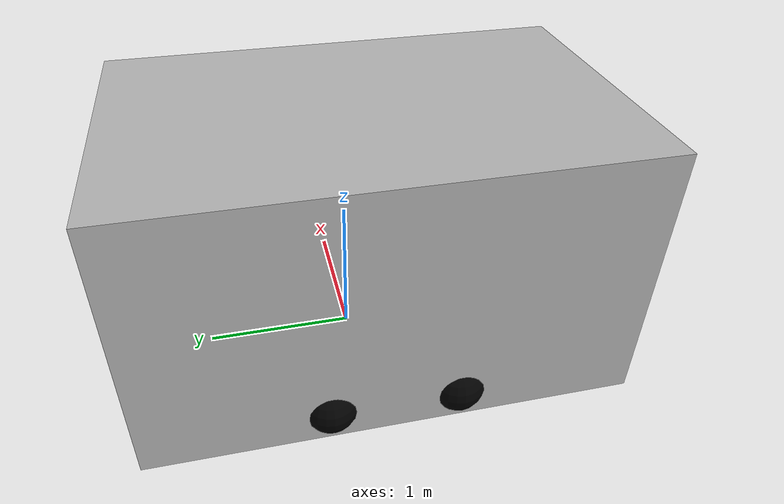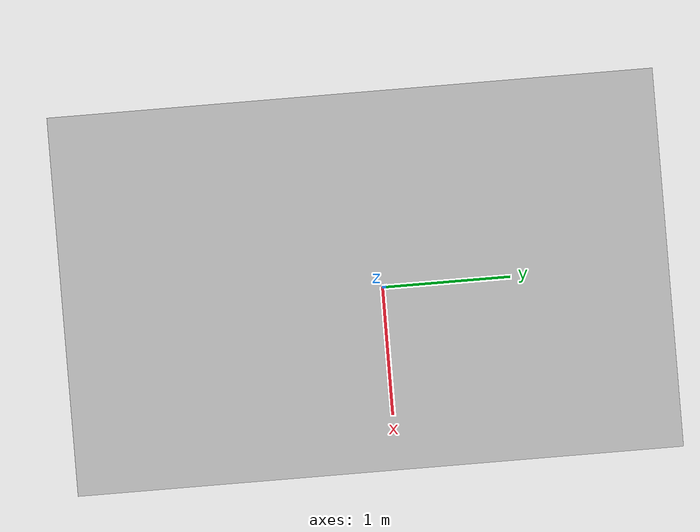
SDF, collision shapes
<?xml version="1.0"?>
<sdf version="1.6">
  <model name="exp_mecanum">
    <static>false</static>
    <link name="chassis">
      <inertial>
        <mass>80.0</mass>
        <inertia>
          <ixx>1.26</ixx><ixy>0</ixy><ixz>0</ixz>
          <iyy>4.16</iyy><iyz>0</iyz>
          <izz>4.81</izz>
        </inertia>
      </inertial>
      <collision name="body_box">
        <pose>-0.03 -0.132 0.9 0 0 0</pose>
        <geometry>
          <box><size>2.0 3.2 1.8</size></box>
        </geometry>
      </collision>
      <visual name="visual">
        <pose>0 0 -0.084 1.57 0 0</pose>
        <geometry>
          <mesh>
            <scale>0.6 0.6 0.6</scale>
            <uri>model://MecanumLift/meshes/MecanumLift.dae</uri>
          </mesh>
        </geometry>
      </visual>
    </link>

    <link name="front_right_wheel">
      <pose>0.858 -0.552 0.186 0 0 0</pose>
      <inertial>
        <mass>2</mass>
        <inertia>
          <ixx>0.145</ixx><ixy>0</ixy><ixz>0</ixz>
          <iyy>0.145</iyy><iyz>0</iyz>
          <izz>0.125</izz>
        </inertia>
      </inertial>
      <collision name="collision">
        <geometry><sphere><radius>0.18</radius></sphere></geometry>
      </collision>
      <visual name="visual">
        <geometry>
          <mesh>
            <uri>model://MecanumLift/meshes/mecanum_wheel_right.STL</uri>
            <scale>0.0036 0.0036 0.0036</scale>
          </mesh>
        </geometry>
        <material><ambient>0 0 0</ambient><diffuse>0 0 0</diffuse></material>
      </visual>
    </link>

    <link name="rear_right_wheel">
      <pose>-0.93 -0.552 0.186 0 0 0</pose>
      <inertial>
        <mass>2</mass>
        <inertia>
          <ixx>0.145</ixx><ixy>0</ixy><ixz>0</ixz>
          <iyy>0.145</iyy><iyz>0</iyz>
          <izz>0.125</izz>
        </inertia>
      </inertial>
      <collision name="collision">
        <geometry><sphere><radius>0.18</radius></sphere></geometry>
      </collision>
      <visual name="visual">
        <geometry>
          <mesh>
            <uri>model://MecanumLift/meshes/mecanum_wheel_left.STL</uri>
            <scale>0.0036 0.0036 0.0036</scale>
          </mesh>
        </geometry>
        <material><ambient>0 0 0</ambient><diffuse>0 0 0</diffuse></material>
      </visual>
    </link>

    <link name="front_left_wheel">
      <pose>0.858 0.282 0.186 0 0 0</pose>
      <inertial>
        <mass>2</mass>
        <inertia>
          <ixx>0.145</ixx><ixy>0</ixy><ixz>0</ixz>
          <iyy>0.145</iyy><iyz>0</iyz>
          <izz>0.125</izz>
        </inertia>
      </inertial>
      <collision name="collision">
        <geometry><sphere><radius>0.18</radius></sphere></geometry>
      </collision>
      <visual name="visual">
        <geometry>
          <mesh>
            <uri>model://MecanumLift/meshes/mecanum_wheel_left.STL</uri>
            <scale>0.0036 0.0036 0.0036</scale>
          </mesh>
        </geometry>
        <material><ambient>0 0 0</ambient><diffuse>0 0 0</diffuse></material>
      </visual>
    </link>

    <link name="rear_left_wheel">
      <pose>-0.93 0.282 0.186 0 0 0</pose>
      <inertial>
        <mass>2</mass>
        <inertia>
          <ixx>0.145</ixx><ixy>0</ixy><ixz>0</ixz>
          <iyy>0.145</iyy><iyz>0</iyz>
          <izz>0.125</izz>
        </inertia>
      </inertial>
      <collision name="collision">
        <geometry><sphere><radius>0.18</radius></sphere></geometry>
      </collision>
      <visual name="visual">
        <geometry>
          <mesh>
            <uri>model://MecanumLift/meshes/mecanum_wheel_right.STL</uri>
            <scale>0.0036 0.0036 0.0036</scale>
          </mesh>
        </geometry>
        <material><ambient>0 0 0</ambient><diffuse>0 0 0</diffuse></material>
      </visual>
    </link>

    <joint name="front_left_wheel_joint" type="revolute">
      <parent>chassis</parent>
      <child>front_left_wheel</child>
      <axis><xyz>0 1 0</xyz><limit><lower>-1e308</lower><upper>1e308</upper></limit></axis>
    </joint>
    <joint name="front_right_wheel_joint" type="revolute">
      <parent>chassis</parent>
      <child>front_right_wheel</child>
      <axis><xyz>0 1 0</xyz><limit><lower>-1e308</lower><upper>1e308</upper></limit></axis>
    </joint>
    <joint name="rear_left_wheel_joint" type="revolute">
      <parent>chassis</parent>
      <child>rear_left_wheel</child>
      <axis><xyz>0 1 0</xyz><limit><lower>-1e308</lower><upper>1e308</upper></limit></axis>
    </joint>
    <joint name="rear_right_wheel_joint" type="revolute">
      <parent>chassis</parent>
      <child>rear_right_wheel</child>
      <axis><xyz>0 1 0</xyz><limit><lower>-1e308</lower><upper>1e308</upper></limit></axis>
    </joint>
  </model>
</sdf>
